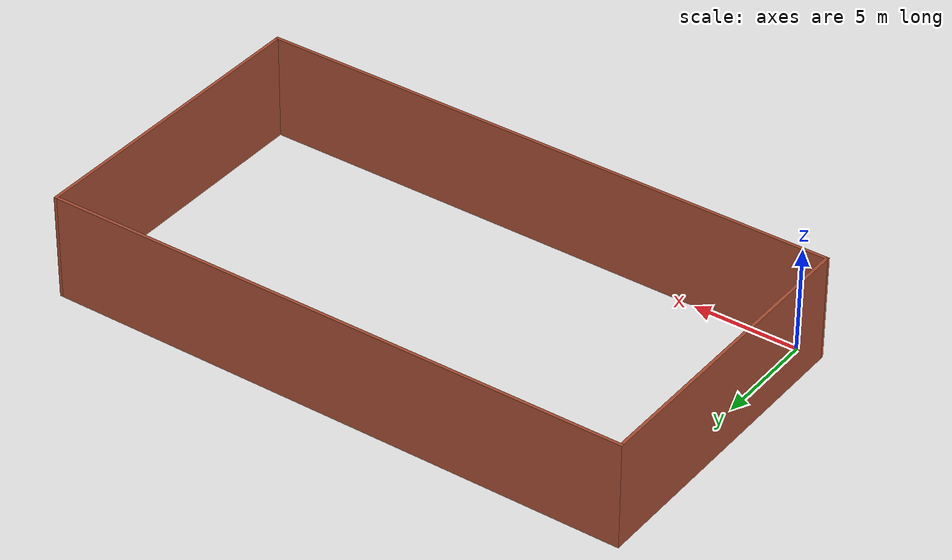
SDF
<?xml version='1.0'?>
<sdf version='1.7'>
  <model name='robomaster2023_map_v1_0'>
    <pose>12.852 7.331 0 0 -0 0</pose>
    <link name='Wall_10'>
      <collision name='Wall_10_Collision'>
        <geometry>
          <box>
            <size>28 0.15 5</size>
          </box>
        </geometry>
        <pose>0 0 2.5 0 -0 0</pose>
      </collision>
      <visual name='Wall_10_Visual'>
        <pose>0 0 2.5 0 -0 0</pose>
        <geometry>
          <box>
            <size>28 0.15 5</size>
          </box>
        </geometry>
        <material>
          <script>
            <uri>file://media/materials/scripts/gazebo.material</uri>
            <name>Gazebo/Bricks</name>
          </script>
          <ambient>1 1 1 1</ambient>
        </material>
        <meta>
          <layer>0</layer>
        </meta>
      </visual>
      <pose>0 7.425 0 0 -0 3.14159</pose>
    </link>
    <link name='Wall_2'>
      <collision name='Wall_2_Collision'>
        <geometry>
          <box>
            <size>28 0.15 5</size>
          </box>
        </geometry>
        <pose>0 0 2.5 0 -0 0</pose>
      </collision>
      <visual name='Wall_2_Visual'>
        <pose>0 0 2.5 0 -0 0</pose>
        <geometry>
          <box>
            <size>28 0.15 5</size>
          </box>
        </geometry>
        <material>
          <script>
            <uri>file://media/materials/scripts/gazebo.material</uri>
            <name>Gazebo/Bricks</name>
          </script>
          <ambient>1 1 1 1</ambient>
        </material>
        <meta>
          <layer>0</layer>
        </meta>
      </visual>
      <pose>0 -7.425 0 0 -0 0</pose>
    </link>
    <link name='Wall_5'>
      <collision name='Wall_5_Collision'>
        <geometry>
          <box>
            <size>15 0.15 5</size>
          </box>
        </geometry>
        <pose>0 0 2.5 0 -0 0</pose>
      </collision>
      <visual name='Wall_5_Visual'>
        <pose>0 0 2.5 0 -0 0</pose>
        <geometry>
          <box>
            <size>15 0.15 5</size>
          </box>
        </geometry>
        <material>
          <script>
            <uri>file://media/materials/scripts/gazebo.material</uri>
            <name>Gazebo/Bricks</name>
          </script>
          <ambient>1 1 1 1</ambient>
        </material>
        <meta>
          <layer>0</layer>
        </meta>
      </visual>
      <pose>-13.925 -0 0 0 -0 1.5708</pose>
    </link>
    <link name='Wall_8'>
      <collision name='Wall_8_Collision'>
        <geometry>
          <box>
            <size>15 0.15 5</size>
          </box>
        </geometry>
        <pose>0 0 2.5 0 -0 0</pose>
      </collision>
      <visual name='Wall_8_Visual'>
        <pose>0 0 2.5 0 -0 0</pose>
        <geometry>
          <box>
            <size>15 0.15 5</size>
          </box>
        </geometry>
        <material>
          <script>
            <uri>file://media/materials/scripts/gazebo.material</uri>
            <name>Gazebo/Bricks</name>
          </script>
          <ambient>1 1 1 1</ambient>
        </material>
        <meta>
          <layer>0</layer>
        </meta>
      </visual>
      <pose>13.925 -0 0 0 -0 1.5708</pose>
    </link>
    <static>1</static>
  </model>
</sdf>
